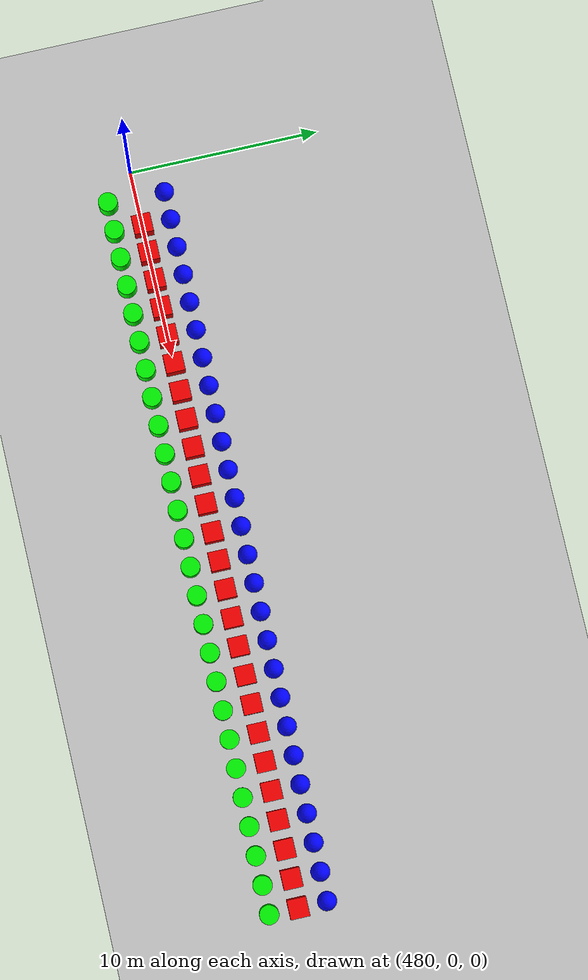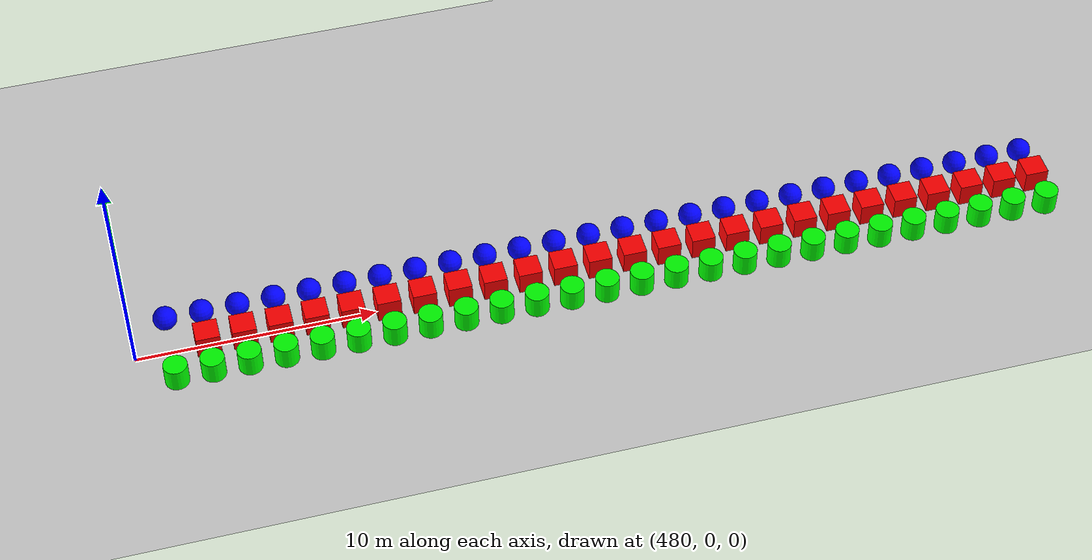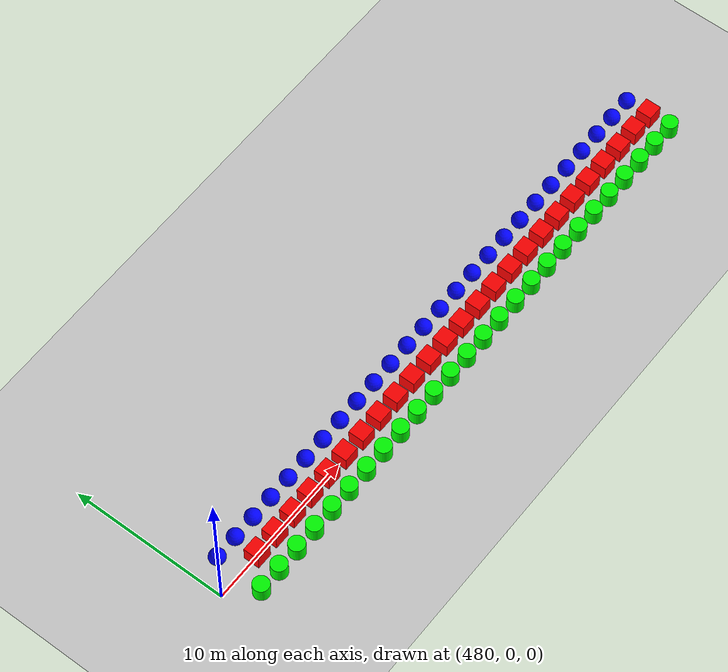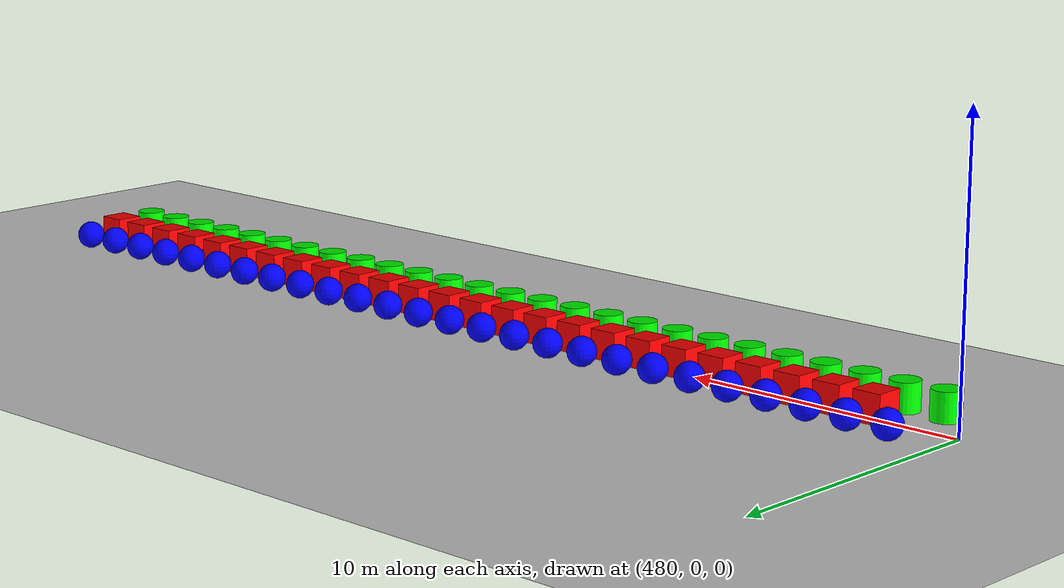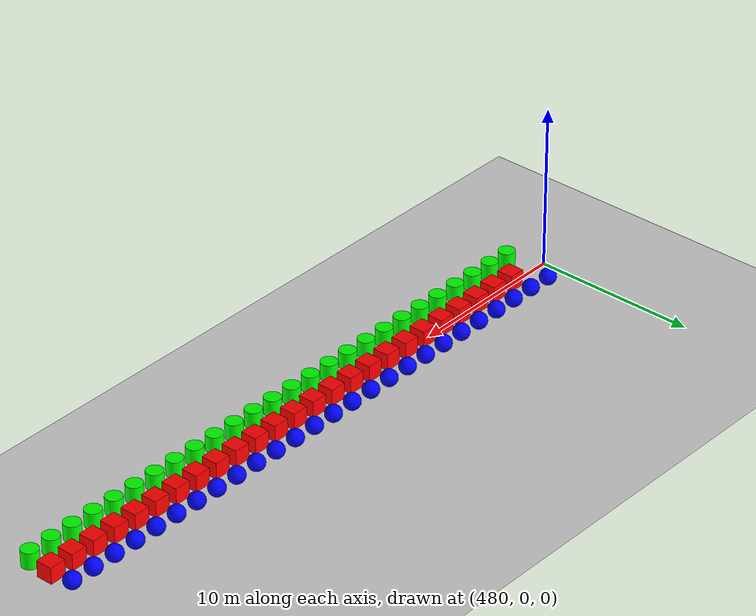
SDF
<sdf version="1.6">
 <world name="shapes">
  <model name="ground_plane">
   <static>true</static>
   <link name="link">
    <collision name="collision">
     <geometry><plane><normal>0 0 1</normal><size>100 100</size></plane></geometry>
    </collision>
    <visual name="visual">
     <geometry><plane><normal>0 0 1</normal><size>100 100</size></plane></geometry>
     <material>
      <ambient>0.8 0.8 0.8 1</ambient>
      <diffuse>0.8 0.8 0.8 1</diffuse>
      <specular>0.8 0.8 0.8 1</specular>
     </material>
    </visual>
   </link>
  </model>
  <model name="cylinder_821">
   <static>false</static>
   <pose>481.5 -1.5 0.5 0 0 0</pose>
   <link name="cylinder_link">
    <inertial>
     <inertia><ixx>2</ixx><ixy>0</ixy><ixz>0</ixz><iyy>2</iyy><iyz>0</iyz><izz>2</izz></inertia>
     <mass>2.0</mass>
    </inertial>
    <collision name="cylinder_collision">
     <geometry><cylinder><radius>0.5</radius><length>1.0</length></cylinder></geometry>
    </collision>
    <visual name="cylinder_visual">
     <geometry><cylinder><radius>0.5</radius><length>1.0</length></cylinder></geometry>
     <material><ambient>0 1 0 1</ambient><diffuse>0 1 0 1</diffuse><specular>0 1 0 1</specular></material>
    </visual>
   </link>
  </model>
  <model name="sphere_821">
   <static>false</static>
   <pose>481.5 1.5 0.5 0 0 0</pose>
   <link name="sphere_link">
    <inertial>
     <inertia><ixx>3</ixx><ixy>0</ixy><ixz>0</ixz><iyy>3</iyy><iyz>0</iyz><izz>3</izz></inertia>
     <mass>3.0</mass>
    </inertial>
    <collision name="sphere_collision"><geometry><sphere><radius>0.5</radius></sphere></geometry></collision>
    <visual name="sphere_visual">
     <geometry><sphere><radius>0.5</radius></sphere></geometry>
     <material><ambient>0 0 1 1</ambient><diffuse>0 0 1 1</diffuse><specular>0 0 1 1</specular></material>
    </visual>
   </link>
  </model>
  <model name="box_822">
   <static>false</static>
   <pose>483.0 0 0.5 0 0 0</pose>
   <link name="box_link">
    <inertial>
     <inertia><ixx>1</ixx><ixy>0</ixy><ixz>0</ixz><iyy>1</iyy><iyz>0</iyz><izz>1</izz></inertia>
     <mass>1.0</mass>
    </inertial>
    <collision name="box_collision"><geometry><box><size>1 1 1</size></box></geometry></collision>
    <visual name="box_visual">
     <geometry><box><size>1 1 1</size></box></geometry>
     <material><ambient>1 0 0 1</ambient><diffuse>1 0 0 1</diffuse><specular>1 0 0 1</specular></material>
    </visual>
   </link>
  </model>
  <model name="cylinder_822">
   <static>false</static>
   <pose>483.0 -1.5 0.5 0 0 0</pose>
   <link name="cylinder_link">
    <inertial>
     <inertia><ixx>2</ixx><ixy>0</ixy><ixz>0</ixz><iyy>2</iyy><iyz>0</iyz><izz>2</izz></inertia>
     <mass>2.0</mass>
    </inertial>
    <collision name="cylinder_collision">
     <geometry><cylinder><radius>0.5</radius><length>1.0</length></cylinder></geometry>
    </collision>
    <visual name="cylinder_visual">
     <geometry><cylinder><radius>0.5</radius><length>1.0</length></cylinder></geometry>
     <material><ambient>0 1 0 1</ambient><diffuse>0 1 0 1</diffuse><specular>0 1 0 1</specular></material>
    </visual>
   </link>
  </model>
  <model name="sphere_822">
   <static>false</static>
   <pose>483.0 1.5 0.5 0 0 0</pose>
   <link name="sphere_link">
    <inertial>
     <inertia><ixx>3</ixx><ixy>0</ixy><ixz>0</ixz><iyy>3</iyy><iyz>0</iyz><izz>3</izz></inertia>
     <mass>3.0</mass>
    </inertial>
    <collision name="sphere_collision"><geometry><sphere><radius>0.5</radius></sphere></geometry></collision>
    <visual name="sphere_visual">
     <geometry><sphere><radius>0.5</radius></sphere></geometry>
     <material><ambient>0 0 1 1</ambient><diffuse>0 0 1 1</diffuse><specular>0 0 1 1</specular></material>
    </visual>
   </link>
  </model>
  <model name="box_823">
   <static>false</static>
   <pose>484.5 0 0.5 0 0 0</pose>
   <link name="box_link">
    <inertial>
     <inertia><ixx>1</ixx><ixy>0</ixy><ixz>0</ixz><iyy>1</iyy><iyz>0</iyz><izz>1</izz></inertia>
     <mass>1.0</mass>
    </inertial>
    <collision name="box_collision"><geometry><box><size>1 1 1</size></box></geometry></collision>
    <visual name="box_visual">
     <geometry><box><size>1 1 1</size></box></geometry>
     <material><ambient>1 0 0 1</ambient><diffuse>1 0 0 1</diffuse><specular>1 0 0 1</specular></material>
    </visual>
   </link>
  </model>
  <model name="cylinder_823">
   <static>false</static>
   <pose>484.5 -1.5 0.5 0 0 0</pose>
   <link name="cylinder_link">
    <inertial>
     <inertia><ixx>2</ixx><ixy>0</ixy><ixz>0</ixz><iyy>2</iyy><iyz>0</iyz><izz>2</izz></inertia>
     <mass>2.0</mass>
    </inertial>
    <collision name="cylinder_collision">
     <geometry><cylinder><radius>0.5</radius><length>1.0</length></cylinder></geometry>
    </collision>
    <visual name="cylinder_visual">
     <geometry><cylinder><radius>0.5</radius><length>1.0</length></cylinder></geometry>
     <material><ambient>0 1 0 1</ambient><diffuse>0 1 0 1</diffuse><specular>0 1 0 1</specular></material>
    </visual>
   </link>
  </model>
  <model name="sphere_823">
   <static>false</static>
   <pose>484.5 1.5 0.5 0 0 0</pose>
   <link name="sphere_link">
    <inertial>
     <inertia><ixx>3</ixx><ixy>0</ixy><ixz>0</ixz><iyy>3</iyy><iyz>0</iyz><izz>3</izz></inertia>
     <mass>3.0</mass>
    </inertial>
    <collision name="sphere_collision"><geometry><sphere><radius>0.5</radius></sphere></geometry></collision>
    <visual name="sphere_visual">
     <geometry><sphere><radius>0.5</radius></sphere></geometry>
     <material><ambient>0 0 1 1</ambient><diffuse>0 0 1 1</diffuse><specular>0 0 1 1</specular></material>
    </visual>
   </link>
  </model>
  <model name="box_824">
   <static>false</static>
   <pose>486.0 0 0.5 0 0 0</pose>
   <link name="box_link">
    <inertial>
     <inertia><ixx>1</ixx><ixy>0</ixy><ixz>0</ixz><iyy>1</iyy><iyz>0</iyz><izz>1</izz></inertia>
     <mass>1.0</mass>
    </inertial>
    <collision name="box_collision"><geometry><box><size>1 1 1</size></box></geometry></collision>
    <visual name="box_visual">
     <geometry><box><size>1 1 1</size></box></geometry>
     <material><ambient>1 0 0 1</ambient><diffuse>1 0 0 1</diffuse><specular>1 0 0 1</specular></material>
    </visual>
   </link>
  </model>
  <model name="cylinder_824">
   <static>false</static>
   <pose>486.0 -1.5 0.5 0 0 0</pose>
   <link name="cylinder_link">
    <inertial>
     <inertia><ixx>2</ixx><ixy>0</ixy><ixz>0</ixz><iyy>2</iyy><iyz>0</iyz><izz>2</izz></inertia>
     <mass>2.0</mass>
    </inertial>
    <collision name="cylinder_collision">
     <geometry><cylinder><radius>0.5</radius><length>1.0</length></cylinder></geometry>
    </collision>
    <visual name="cylinder_visual">
     <geometry><cylinder><radius>0.5</radius><length>1.0</length></cylinder></geometry>
     <material><ambient>0 1 0 1</ambient><diffuse>0 1 0 1</diffuse><specular>0 1 0 1</specular></material>
    </visual>
   </link>
  </model>
  <model name="sphere_824">
   <static>false</static>
   <pose>486.0 1.5 0.5 0 0 0</pose>
   <link name="sphere_link">
    <inertial>
     <inertia><ixx>3</ixx><ixy>0</ixy><ixz>0</ixz><iyy>3</iyy><iyz>0</iyz><izz>3</izz></inertia>
     <mass>3.0</mass>
    </inertial>
    <collision name="sphere_collision"><geometry><sphere><radius>0.5</radius></sphere></geometry></collision>
    <visual name="sphere_visual">
     <geometry><sphere><radius>0.5</radius></sphere></geometry>
     <material><ambient>0 0 1 1</ambient><diffuse>0 0 1 1</diffuse><specular>0 0 1 1</specular></material>
    </visual>
   </link>
  </model>
  <model name="box_825">
   <static>false</static>
   <pose>487.5 0 0.5 0 0 0</pose>
   <link name="box_link">
    <inertial>
     <inertia><ixx>1</ixx><ixy>0</ixy><ixz>0</ixz><iyy>1</iyy><iyz>0</iyz><izz>1</izz></inertia>
     <mass>1.0</mass>
    </inertial>
    <collision name="box_collision"><geometry><box><size>1 1 1</size></box></geometry></collision>
    <visual name="box_visual">
     <geometry><box><size>1 1 1</size></box></geometry>
     <material><ambient>1 0 0 1</ambient><diffuse>1 0 0 1</diffuse><specular>1 0 0 1</specular></material>
    </visual>
   </link>
  </model>
  <model name="cylinder_825">
   <static>false</static>
   <pose>487.5 -1.5 0.5 0 0 0</pose>
   <link name="cylinder_link">
    <inertial>
     <inertia><ixx>2</ixx><ixy>0</ixy><ixz>0</ixz><iyy>2</iyy><iyz>0</iyz><izz>2</izz></inertia>
     <mass>2.0</mass>
    </inertial>
    <collision name="cylinder_collision">
     <geometry><cylinder><radius>0.5</radius><length>1.0</length></cylinder></geometry>
    </collision>
    <visual name="cylinder_visual">
     <geometry><cylinder><radius>0.5</radius><length>1.0</length></cylinder></geometry>
     <material><ambient>0 1 0 1</ambient><diffuse>0 1 0 1</diffuse><specular>0 1 0 1</specular></material>
    </visual>
   </link>
  </model>
  <model name="sphere_825">
   <static>false</static>
   <pose>487.5 1.5 0.5 0 0 0</pose>
   <link name="sphere_link">
    <inertial>
     <inertia><ixx>3</ixx><ixy>0</ixy><ixz>0</ixz><iyy>3</iyy><iyz>0</iyz><izz>3</izz></inertia>
     <mass>3.0</mass>
    </inertial>
    <collision name="sphere_collision"><geometry><sphere><radius>0.5</radius></sphere></geometry></collision>
    <visual name="sphere_visual">
     <geometry><sphere><radius>0.5</radius></sphere></geometry>
     <material><ambient>0 0 1 1</ambient><diffuse>0 0 1 1</diffuse><specular>0 0 1 1</specular></material>
    </visual>
   </link>
  </model>
  <model name="box_826">
   <static>false</static>
   <pose>489.0 0 0.5 0 0 0</pose>
   <link name="box_link">
    <inertial>
     <inertia><ixx>1</ixx><ixy>0</ixy><ixz>0</ixz><iyy>1</iyy><iyz>0</iyz><izz>1</izz></inertia>
     <mass>1.0</mass>
    </inertial>
    <collision name="box_collision"><geometry><box><size>1 1 1</size></box></geometry></collision>
    <visual name="box_visual">
     <geometry><box><size>1 1 1</size></box></geometry>
     <material><ambient>1 0 0 1</ambient><diffuse>1 0 0 1</diffuse><specular>1 0 0 1</specular></material>
    </visual>
   </link>
  </model>
  <model name="cylinder_826">
   <static>false</static>
   <pose>489.0 -1.5 0.5 0 0 0</pose>
   <link name="cylinder_link">
    <inertial>
     <inertia><ixx>2</ixx><ixy>0</ixy><ixz>0</ixz><iyy>2</iyy><iyz>0</iyz><izz>2</izz></inertia>
     <mass>2.0</mass>
    </inertial>
    <collision name="cylinder_collision">
     <geometry><cylinder><radius>0.5</radius><length>1.0</length></cylinder></geometry>
    </collision>
    <visual name="cylinder_visual">
     <geometry><cylinder><radius>0.5</radius><length>1.0</length></cylinder></geometry>
     <material><ambient>0 1 0 1</ambient><diffuse>0 1 0 1</diffuse><specular>0 1 0 1</specular></material>
    </visual>
   </link>
  </model>
  <model name="sphere_826">
   <static>false</static>
   <pose>489.0 1.5 0.5 0 0 0</pose>
   <link name="sphere_link">
    <inertial>
     <inertia><ixx>3</ixx><ixy>0</ixy><ixz>0</ixz><iyy>3</iyy><iyz>0</iyz><izz>3</izz></inertia>
     <mass>3.0</mass>
    </inertial>
    <collision name="sphere_collision"><geometry><sphere><radius>0.5</radius></sphere></geometry></collision>
    <visual name="sphere_visual">
     <geometry><sphere><radius>0.5</radius></sphere></geometry>
     <material><ambient>0 0 1 1</ambient><diffuse>0 0 1 1</diffuse><specular>0 0 1 1</specular></material>
    </visual>
   </link>
  </model>
  <model name="box_827">
   <static>false</static>
   <pose>490.5 0 0.5 0 0 0</pose>
   <link name="box_link">
    <inertial>
     <inertia><ixx>1</ixx><ixy>0</ixy><ixz>0</ixz><iyy>1</iyy><iyz>0</iyz><izz>1</izz></inertia>
     <mass>1.0</mass>
    </inertial>
    <collision name="box_collision"><geometry><box><size>1 1 1</size></box></geometry></collision>
    <visual name="box_visual">
     <geometry><box><size>1 1 1</size></box></geometry>
     <material><ambient>1 0 0 1</ambient><diffuse>1 0 0 1</diffuse><specular>1 0 0 1</specular></material>
    </visual>
   </link>
  </model>
  <model name="cylinder_827">
   <static>false</static>
   <pose>490.5 -1.5 0.5 0 0 0</pose>
   <link name="cylinder_link">
    <inertial>
     <inertia><ixx>2</ixx><ixy>0</ixy><ixz>0</ixz><iyy>2</iyy><iyz>0</iyz><izz>2</izz></inertia>
     <mass>2.0</mass>
    </inertial>
    <collision name="cylinder_collision">
     <geometry><cylinder><radius>0.5</radius><length>1.0</length></cylinder></geometry>
    </collision>
    <visual name="cylinder_visual">
     <geometry><cylinder><radius>0.5</radius><length>1.0</length></cylinder></geometry>
     <material><ambient>0 1 0 1</ambient><diffuse>0 1 0 1</diffuse><specular>0 1 0 1</specular></material>
    </visual>
   </link>
  </model>
  <model name="sphere_827">
   <static>false</static>
   <pose>490.5 1.5 0.5 0 0 0</pose>
   <link name="sphere_link">
    <inertial>
     <inertia><ixx>3</ixx><ixy>0</ixy><ixz>0</ixz><iyy>3</iyy><iyz>0</iyz><izz>3</izz></inertia>
     <mass>3.0</mass>
    </inertial>
    <collision name="sphere_collision"><geometry><sphere><radius>0.5</radius></sphere></geometry></collision>
    <visual name="sphere_visual">
     <geometry><sphere><radius>0.5</radius></sphere></geometry>
     <material><ambient>0 0 1 1</ambient><diffuse>0 0 1 1</diffuse><specular>0 0 1 1</specular></material>
    </visual>
   </link>
  </model>
  <model name="box_828">
   <static>false</static>
   <pose>492.0 0 0.5 0 0 0</pose>
   <link name="box_link">
    <inertial>
     <inertia><ixx>1</ixx><ixy>0</ixy><ixz>0</ixz><iyy>1</iyy><iyz>0</iyz><izz>1</izz></inertia>
     <mass>1.0</mass>
    </inertial>
    <collision name="box_collision"><geometry><box><size>1 1 1</size></box></geometry></collision>
    <visual name="box_visual">
     <geometry><box><size>1 1 1</size></box></geometry>
     <material><ambient>1 0 0 1</ambient><diffuse>1 0 0 1</diffuse><specular>1 0 0 1</specular></material>
    </visual>
   </link>
  </model>
  <model name="cylinder_828">
   <static>false</static>
   <pose>492.0 -1.5 0.5 0 0 0</pose>
   <link name="cylinder_link">
    <inertial>
     <inertia><ixx>2</ixx><ixy>0</ixy><ixz>0</ixz><iyy>2</iyy><iyz>0</iyz><izz>2</izz></inertia>
     <mass>2.0</mass>
    </inertial>
    <collision name="cylinder_collision">
     <geometry><cylinder><radius>0.5</radius><length>1.0</length></cylinder></geometry>
    </collision>
    <visual name="cylinder_visual">
     <geometry><cylinder><radius>0.5</radius><length>1.0</length></cylinder></geometry>
     <material><ambient>0 1 0 1</ambient><diffuse>0 1 0 1</diffuse><specular>0 1 0 1</specular></material>
    </visual>
   </link>
  </model>
  <model name="sphere_828">
   <static>false</static>
   <pose>492.0 1.5 0.5 0 0 0</pose>
   <link name="sphere_link">
    <inertial>
     <inertia><ixx>3</ixx><ixy>0</ixy><ixz>0</ixz><iyy>3</iyy><iyz>0</iyz><izz>3</izz></inertia>
     <mass>3.0</mass>
    </inertial>
    <collision name="sphere_collision"><geometry><sphere><radius>0.5</radius></sphere></geometry></collision>
    <visual name="sphere_visual">
     <geometry><sphere><radius>0.5</radius></sphere></geometry>
     <material><ambient>0 0 1 1</ambient><diffuse>0 0 1 1</diffuse><specular>0 0 1 1</specular></material>
    </visual>
   </link>
  </model>
  <model name="box_829">
   <static>false</static>
   <pose>493.5 0 0.5 0 0 0</pose>
   <link name="box_link">
    <inertial>
     <inertia><ixx>1</ixx><ixy>0</ixy><ixz>0</ixz><iyy>1</iyy><iyz>0</iyz><izz>1</izz></inertia>
     <mass>1.0</mass>
    </inertial>
    <collision name="box_collision"><geometry><box><size>1 1 1</size></box></geometry></collision>
    <visual name="box_visual">
     <geometry><box><size>1 1 1</size></box></geometry>
     <material><ambient>1 0 0 1</ambient><diffuse>1 0 0 1</diffuse><specular>1 0 0 1</specular></material>
    </visual>
   </link>
  </model>
  <model name="cylinder_829">
   <static>false</static>
   <pose>493.5 -1.5 0.5 0 0 0</pose>
   <link name="cylinder_link">
    <inertial>
     <inertia><ixx>2</ixx><ixy>0</ixy><ixz>0</ixz><iyy>2</iyy><iyz>0</iyz><izz>2</izz></inertia>
     <mass>2.0</mass>
    </inertial>
    <collision name="cylinder_collision">
     <geometry><cylinder><radius>0.5</radius><length>1.0</length></cylinder></geometry>
    </collision>
    <visual name="cylinder_visual">
     <geometry><cylinder><radius>0.5</radius><length>1.0</length></cylinder></geometry>
     <material><ambient>0 1 0 1</ambient><diffuse>0 1 0 1</diffuse><specular>0 1 0 1</specular></material>
    </visual>
   </link>
  </model>
  <model name="sphere_829">
   <static>false</static>
   <pose>493.5 1.5 0.5 0 0 0</pose>
   <link name="sphere_link">
    <inertial>
     <inertia><ixx>3</ixx><ixy>0</ixy><ixz>0</ixz><iyy>3</iyy><iyz>0</iyz><izz>3</izz></inertia>
     <mass>3.0</mass>
    </inertial>
    <collision name="sphere_collision"><geometry><sphere><radius>0.5</radius></sphere></geometry></collision>
    <visual name="sphere_visual">
     <geometry><sphere><radius>0.5</radius></sphere></geometry>
     <material><ambient>0 0 1 1</ambient><diffuse>0 0 1 1</diffuse><specular>0 0 1 1</specular></material>
    </visual>
   </link>
  </model>
  <model name="box_830">
   <static>false</static>
   <pose>495.0 0 0.5 0 0 0</pose>
   <link name="box_link">
    <inertial>
     <inertia><ixx>1</ixx><ixy>0</ixy><ixz>0</ixz><iyy>1</iyy><iyz>0</iyz><izz>1</izz></inertia>
     <mass>1.0</mass>
    </inertial>
    <collision name="box_collision"><geometry><box><size>1 1 1</size></box></geometry></collision>
    <visual name="box_visual">
     <geometry><box><size>1 1 1</size></box></geometry>
     <material><ambient>1 0 0 1</ambient><diffuse>1 0 0 1</diffuse><specular>1 0 0 1</specular></material>
    </visual>
   </link>
  </model>
  <model name="cylinder_830">
   <static>false</static>
   <pose>495.0 -1.5 0.5 0 0 0</pose>
   <link name="cylinder_link">
    <inertial>
     <inertia><ixx>2</ixx><ixy>0</ixy><ixz>0</ixz><iyy>2</iyy><iyz>0</iyz><izz>2</izz></inertia>
     <mass>2.0</mass>
    </inertial>
    <collision name="cylinder_collision">
     <geometry><cylinder><radius>0.5</radius><length>1.0</length></cylinder></geometry>
    </collision>
    <visual name="cylinder_visual">
     <geometry><cylinder><radius>0.5</radius><length>1.0</length></cylinder></geometry>
     <material><ambient>0 1 0 1</ambient><diffuse>0 1 0 1</diffuse><specular>0 1 0 1</specular></material>
    </visual>
   </link>
  </model>
  <model name="sphere_830">
   <static>false</static>
   <pose>495.0 1.5 0.5 0 0 0</pose>
   <link name="sphere_link">
    <inertial>
     <inertia><ixx>3</ixx><ixy>0</ixy><ixz>0</ixz><iyy>3</iyy><iyz>0</iyz><izz>3</izz></inertia>
     <mass>3.0</mass>
    </inertial>
    <collision name="sphere_collision"><geometry><sphere><radius>0.5</radius></sphere></geometry></collision>
    <visual name="sphere_visual">
     <geometry><sphere><radius>0.5</radius></sphere></geometry>
     <material><ambient>0 0 1 1</ambient><diffuse>0 0 1 1</diffuse><specular>0 0 1 1</specular></material>
    </visual>
   </link>
  </model>
  <model name="box_831">
   <static>false</static>
   <pose>496.5 0 0.5 0 0 0</pose>
   <link name="box_link">
    <inertial>
     <inertia><ixx>1</ixx><ixy>0</ixy><ixz>0</ixz><iyy>1</iyy><iyz>0</iyz><izz>1</izz></inertia>
     <mass>1.0</mass>
    </inertial>
    <collision name="box_collision"><geometry><box><size>1 1 1</size></box></geometry></collision>
    <visual name="box_visual">
     <geometry><box><size>1 1 1</size></box></geometry>
     <material><ambient>1 0 0 1</ambient><diffuse>1 0 0 1</diffuse><specular>1 0 0 1</specular></material>
    </visual>
   </link>
  </model>
  <model name="cylinder_831">
   <static>false</static>
   <pose>496.5 -1.5 0.5 0 0 0</pose>
   <link name="cylinder_link">
    <inertial>
     <inertia><ixx>2</ixx><ixy>0</ixy><ixz>0</ixz><iyy>2</iyy><iyz>0</iyz><izz>2</izz></inertia>
     <mass>2.0</mass>
    </inertial>
    <collision name="cylinder_collision">
     <geometry><cylinder><radius>0.5</radius><length>1.0</length></cylinder></geometry>
    </collision>
    <visual name="cylinder_visual">
     <geometry><cylinder><radius>0.5</radius><length>1.0</length></cylinder></geometry>
     <material><ambient>0 1 0 1</ambient><diffuse>0 1 0 1</diffuse><specular>0 1 0 1</specular></material>
    </visual>
   </link>
  </model>
  <model name="sphere_831">
   <static>false</static>
   <pose>496.5 1.5 0.5 0 0 0</pose>
   <link name="sphere_link">
    <inertial>
     <inertia><ixx>3</ixx><ixy>0</ixy><ixz>0</ixz><iyy>3</iyy><iyz>0</iyz><izz>3</izz></inertia>
     <mass>3.0</mass>
    </inertial>
    <collision name="sphere_collision"><geometry><sphere><radius>0.5</radius></sphere></geometry></collision>
    <visual name="sphere_visual">
     <geometry><sphere><radius>0.5</radius></sphere></geometry>
     <material><ambient>0 0 1 1</ambient><diffuse>0 0 1 1</diffuse><specular>0 0 1 1</specular></material>
    </visual>
   </link>
  </model>
  <model name="box_832">
   <static>false</static>
   <pose>498.0 0 0.5 0 0 0</pose>
   <link name="box_link">
    <inertial>
     <inertia><ixx>1</ixx><ixy>0</ixy><ixz>0</ixz><iyy>1</iyy><iyz>0</iyz><izz>1</izz></inertia>
     <mass>1.0</mass>
    </inertial>
    <collision name="box_collision"><geometry><box><size>1 1 1</size></box></geometry></collision>
    <visual name="box_visual">
     <geometry><box><size>1 1 1</size></box></geometry>
     <material><ambient>1 0 0 1</ambient><diffuse>1 0 0 1</diffuse><specular>1 0 0 1</specular></material>
    </visual>
   </link>
  </model>
  <model name="cylinder_832">
   <static>false</static>
   <pose>498.0 -1.5 0.5 0 0 0</pose>
   <link name="cylinder_link">
    <inertial>
     <inertia><ixx>2</ixx><ixy>0</ixy><ixz>0</ixz><iyy>2</iyy><iyz>0</iyz><izz>2</izz></inertia>
     <mass>2.0</mass>
    </inertial>
    <collision name="cylinder_collision">
     <geometry><cylinder><radius>0.5</radius><length>1.0</length></cylinder></geometry>
    </collision>
    <visual name="cylinder_visual">
     <geometry><cylinder><radius>0.5</radius><length>1.0</length></cylinder></geometry>
     <material><ambient>0 1 0 1</ambient><diffuse>0 1 0 1</diffuse><specular>0 1 0 1</specular></material>
    </visual>
   </link>
  </model>
  <model name="sphere_832">
   <static>false</static>
   <pose>498.0 1.5 0.5 0 0 0</pose>
   <link name="sphere_link">
    <inertial>
     <inertia><ixx>3</ixx><ixy>0</ixy><ixz>0</ixz><iyy>3</iyy><iyz>0</iyz><izz>3</izz></inertia>
     <mass>3.0</mass>
    </inertial>
    <collision name="sphere_collision"><geometry><sphere><radius>0.5</radius></sphere></geometry></collision>
    <visual name="sphere_visual">
     <geometry><sphere><radius>0.5</radius></sphere></geometry>
     <material><ambient>0 0 1 1</ambient><diffuse>0 0 1 1</diffuse><specular>0 0 1 1</specular></material>
    </visual>
   </link>
  </model>
  <model name="box_833">
   <static>false</static>
   <pose>499.5 0 0.5 0 0 0</pose>
   <link name="box_link">
    <inertial>
     <inertia><ixx>1</ixx><ixy>0</ixy><ixz>0</ixz><iyy>1</iyy><iyz>0</iyz><izz>1</izz></inertia>
     <mass>1.0</mass>
    </inertial>
    <collision name="box_collision"><geometry><box><size>1 1 1</size></box></geometry></collision>
    <visual name="box_visual">
     <geometry><box><size>1 1 1</size></box></geometry>
     <material><ambient>1 0 0 1</ambient><diffuse>1 0 0 1</diffuse><specular>1 0 0 1</specular></material>
    </visual>
   </link>
  </model>
  <model name="cylinder_833">
   <static>false</static>
   <pose>499.5 -1.5 0.5 0 0 0</pose>
   <link name="cylinder_link">
    <inertial>
     <inertia><ixx>2</ixx><ixy>0</ixy><ixz>0</ixz><iyy>2</iyy><iyz>0</iyz><izz>2</izz></inertia>
     <mass>2.0</mass>
    </inertial>
    <collision name="cylinder_collision">
     <geometry><cylinder><radius>0.5</radius><length>1.0</length></cylinder></geometry>
    </collision>
    <visual name="cylinder_visual">
     <geometry><cylinder><radius>0.5</radius><length>1.0</length></cylinder></geometry>
     <material><ambient>0 1 0 1</ambient><diffuse>0 1 0 1</diffuse><specular>0 1 0 1</specular></material>
    </visual>
   </link>
  </model>
  <model name="sphere_833">
   <static>false</static>
   <pose>499.5 1.5 0.5 0 0 0</pose>
   <link name="sphere_link">
    <inertial>
     <inertia><ixx>3</ixx><ixy>0</ixy><ixz>0</ixz><iyy>3</iyy><iyz>0</iyz><izz>3</izz></inertia>
     <mass>3.0</mass>
    </inertial>
    <collision name="sphere_collision"><geometry><sphere><radius>0.5</radius></sphere></geometry></collision>
    <visual name="sphere_visual">
     <geometry><sphere><radius>0.5</radius></sphere></geometry>
     <material><ambient>0 0 1 1</ambient><diffuse>0 0 1 1</diffuse><specular>0 0 1 1</specular></material>
    </visual>
   </link>
  </model>
  <model name="box_834">
   <static>false</static>
   <pose>501.0 0 0.5 0 0 0</pose>
   <link name="box_link">
    <inertial>
     <inertia><ixx>1</ixx><ixy>0</ixy><ixz>0</ixz><iyy>1</iyy><iyz>0</iyz><izz>1</izz></inertia>
     <mass>1.0</mass>
    </inertial>
    <collision name="box_collision"><geometry><box><size>1 1 1</size></box></geometry></collision>
    <visual name="box_visual">
     <geometry><box><size>1 1 1</size></box></geometry>
     <material><ambient>1 0 0 1</ambient><diffuse>1 0 0 1</diffuse><specular>1 0 0 1</specular></material>
    </visual>
   </link>
  </model>
  <model name="cylinder_834">
   <static>false</static>
   <pose>501.0 -1.5 0.5 0 0 0</pose>
   <link name="cylinder_link">
    <inertial>
     <inertia><ixx>2</ixx><ixy>0</ixy><ixz>0</ixz><iyy>2</iyy><iyz>0</iyz><izz>2</izz></inertia>
     <mass>2.0</mass>
    </inertial>
    <collision name="cylinder_collision">
     <geometry><cylinder><radius>0.5</radius><length>1.0</length></cylinder></geometry>
    </collision>
    <visual name="cylinder_visual">
     <geometry><cylinder><radius>0.5</radius><length>1.0</length></cylinder></geometry>
     <material><ambient>0 1 0 1</ambient><diffuse>0 1 0 1</diffuse><specular>0 1 0 1</specular></material>
    </visual>
   </link>
  </model>
  <model name="sphere_834">
   <static>false</static>
   <pose>501.0 1.5 0.5 0 0 0</pose>
   <link name="sphere_link">
    <inertial>
     <inertia><ixx>3</ixx><ixy>0</ixy><ixz>0</ixz><iyy>3</iyy><iyz>0</iyz><izz>3</izz></inertia>
     <mass>3.0</mass>
    </inertial>
    <collision name="sphere_collision"><geometry><sphere><radius>0.5</radius></sphere></geometry></collision>
    <visual name="sphere_visual">
     <geometry><sphere><radius>0.5</radius></sphere></geometry>
     <material><ambient>0 0 1 1</ambient><diffuse>0 0 1 1</diffuse><specular>0 0 1 1</specular></material>
    </visual>
   </link>
  </model>
  <model name="box_835">
   <static>false</static>
   <pose>502.5 0 0.5 0 0 0</pose>
   <link name="box_link">
    <inertial>
     <inertia><ixx>1</ixx><ixy>0</ixy><ixz>0</ixz><iyy>1</iyy><iyz>0</iyz><izz>1</izz></inertia>
     <mass>1.0</mass>
    </inertial>
    <collision name="box_collision"><geometry><box><size>1 1 1</size></box></geometry></collision>
    <visual name="box_visual">
     <geometry><box><size>1 1 1</size></box></geometry>
     <material><ambient>1 0 0 1</ambient><diffuse>1 0 0 1</diffuse><specular>1 0 0 1</specular></material>
    </visual>
   </link>
  </model>
  <model name="cylinder_835">
   <static>false</static>
   <pose>502.5 -1.5 0.5 0 0 0</pose>
   <link name="cylinder_link">
    <inertial>
     <inertia><ixx>2</ixx><ixy>0</ixy><ixz>0</ixz><iyy>2</iyy><iyz>0</iyz><izz>2</izz></inertia>
     <mass>2.0</mass>
    </inertial>
    <collision name="cylinder_collision">
     <geometry><cylinder><radius>0.5</radius><length>1.0</length></cylinder></geometry>
    </collision>
    <visual name="cylinder_visual">
     <geometry><cylinder><radius>0.5</radius><length>1.0</length></cylinder></geometry>
     <material><ambient>0 1 0 1</ambient><diffuse>0 1 0 1</diffuse><specular>0 1 0 1</specular></material>
    </visual>
   </link>
  </model>
  <model name="sphere_835">
   <static>false</static>
   <pose>502.5 1.5 0.5 0 0 0</pose>
   <link name="sphere_link">
    <inertial>
     <inertia><ixx>3</ixx><ixy>0</ixy><ixz>0</ixz><iyy>3</iyy><iyz>0</iyz><izz>3</izz></inertia>
     <mass>3.0</mass>
    </inertial>
    <collision name="sphere_collision"><geometry><sphere><radius>0.5</radius></sphere></geometry></collision>
    <visual name="sphere_visual">
     <geometry><sphere><radius>0.5</radius></sphere></geometry>
     <material><ambient>0 0 1 1</ambient><diffuse>0 0 1 1</diffuse><specular>0 0 1 1</specular></material>
    </visual>
   </link>
  </model>
  <model name="box_836">
   <static>false</static>
   <pose>504.0 0 0.5 0 0 0</pose>
   <link name="box_link">
    <inertial>
     <inertia><ixx>1</ixx><ixy>0</ixy><ixz>0</ixz><iyy>1</iyy><iyz>0</iyz><izz>1</izz></inertia>
     <mass>1.0</mass>
    </inertial>
    <collision name="box_collision"><geometry><box><size>1 1 1</size></box></geometry></collision>
    <visual name="box_visual">
     <geometry><box><size>1 1 1</size></box></geometry>
     <material><ambient>1 0 0 1</ambient><diffuse>1 0 0 1</diffuse><specular>1 0 0 1</specular></material>
    </visual>
   </link>
  </model>
  <model name="cylinder_836">
   <static>false</static>
   <pose>504.0 -1.5 0.5 0 0 0</pose>
   <link name="cylinder_link">
    <inertial>
     <inertia><ixx>2</ixx><ixy>0</ixy><ixz>0</ixz><iyy>2</iyy><iyz>0</iyz><izz>2</izz></inertia>
     <mass>2.0</mass>
    </inertial>
    <collision name="cylinder_collision">
     <geometry><cylinder><radius>0.5</radius><length>1.0</length></cylinder></geometry>
    </collision>
    <visual name="cylinder_visual">
     <geometry><cylinder><radius>0.5</radius><length>1.0</length></cylinder></geometry>
     <material><ambient>0 1 0 1</ambient><diffuse>0 1 0 1</diffuse><specular>0 1 0 1</specular></material>
    </visual>
   </link>
  </model>
  <model name="sphere_836">
   <static>false</static>
   <pose>504.0 1.5 0.5 0 0 0</pose>
   <link name="sphere_link">
    <inertial>
     <inertia><ixx>3</ixx><ixy>0</ixy><ixz>0</ixz><iyy>3</iyy><iyz>0</iyz><izz>3</izz></inertia>
     <mass>3.0</mass>
    </inertial>
    <collision name="sphere_collision"><geometry><sphere><radius>0.5</radius></sphere></geometry></collision>
    <visual name="sphere_visual">
     <geometry><sphere><radius>0.5</radius></sphere></geometry>
     <material><ambient>0 0 1 1</ambient><diffuse>0 0 1 1</diffuse><specular>0 0 1 1</specular></material>
    </visual>
   </link>
  </model>
  <model name="box_837">
   <static>false</static>
   <pose>505.5 0 0.5 0 0 0</pose>
   <link name="box_link">
    <inertial>
     <inertia><ixx>1</ixx><ixy>0</ixy><ixz>0</ixz><iyy>1</iyy><iyz>0</iyz><izz>1</izz></inertia>
     <mass>1.0</mass>
    </inertial>
    <collision name="box_collision"><geometry><box><size>1 1 1</size></box></geometry></collision>
    <visual name="box_visual">
     <geometry><box><size>1 1 1</size></box></geometry>
     <material><ambient>1 0 0 1</ambient><diffuse>1 0 0 1</diffuse><specular>1 0 0 1</specular></material>
    </visual>
   </link>
  </model>
  <model name="cylinder_837">
   <static>false</static>
   <pose>505.5 -1.5 0.5 0 0 0</pose>
   <link name="cylinder_link">
    <inertial>
     <inertia><ixx>2</ixx><ixy>0</ixy><ixz>0</ixz><iyy>2</iyy><iyz>0</iyz><izz>2</izz></inertia>
     <mass>2.0</mass>
    </inertial>
    <collision name="cylinder_collision">
     <geometry><cylinder><radius>0.5</radius><length>1.0</length></cylinder></geometry>
    </collision>
    <visual name="cylinder_visual">
     <geometry><cylinder><radius>0.5</radius><length>1.0</length></cylinder></geometry>
     <material><ambient>0 1 0 1</ambient><diffuse>0 1 0 1</diffuse><specular>0 1 0 1</specular></material>
    </visual>
   </link>
  </model>
  <model name="sphere_837">
   <static>false</static>
   <pose>505.5 1.5 0.5 0 0 0</pose>
   <link name="sphere_link">
    <inertial>
     <inertia><ixx>3</ixx><ixy>0</ixy><ixz>0</ixz><iyy>3</iyy><iyz>0</iyz><izz>3</izz></inertia>
     <mass>3.0</mass>
    </inertial>
    <collision name="sphere_collision"><geometry><sphere><radius>0.5</radius></sphere></geometry></collision>
    <visual name="sphere_visual">
     <geometry><sphere><radius>0.5</radius></sphere></geometry>
     <material><ambient>0 0 1 1</ambient><diffuse>0 0 1 1</diffuse><specular>0 0 1 1</specular></material>
    </visual>
   </link>
  </model>
  <model name="box_838">
   <static>false</static>
   <pose>507.0 0 0.5 0 0 0</pose>
   <link name="box_link">
    <inertial>
     <inertia><ixx>1</ixx><ixy>0</ixy><ixz>0</ixz><iyy>1</iyy><iyz>0</iyz><izz>1</izz></inertia>
     <mass>1.0</mass>
    </inertial>
    <collision name="box_collision"><geometry><box><size>1 1 1</size></box></geometry></collision>
    <visual name="box_visual">
     <geometry><box><size>1 1 1</size></box></geometry>
     <material><ambient>1 0 0 1</ambient><diffuse>1 0 0 1</diffuse><specular>1 0 0 1</specular></material>
    </visual>
   </link>
  </model>
  <model name="cylinder_838">
   <static>false</static>
   <pose>507.0 -1.5 0.5 0 0 0</pose>
   <link name="cylinder_link">
    <inertial>
     <inertia><ixx>2</ixx><ixy>0</ixy><ixz>0</ixz><iyy>2</iyy><iyz>0</iyz><izz>2</izz></inertia>
     <mass>2.0</mass>
    </inertial>
    <collision name="cylinder_collision">
     <geometry><cylinder><radius>0.5</radius><length>1.0</length></cylinder></geometry>
    </collision>
    <visual name="cylinder_visual">
     <geometry><cylinder><radius>0.5</radius><length>1.0</length></cylinder></geometry>
     <material><ambient>0 1 0 1</ambient><diffuse>0 1 0 1</diffuse><specular>0 1 0 1</specular></material>
    </visual>
   </link>
  </model>
  <model name="sphere_838">
   <static>false</static>
   <pose>507.0 1.5 0.5 0 0 0</pose>
   <link name="sphere_link">
    <inertial>
     <inertia><ixx>3</ixx><ixy>0</ixy><ixz>0</ixz><iyy>3</iyy><iyz>0</iyz><izz>3</izz></inertia>
     <mass>3.0</mass>
    </inertial>
    <collision name="sphere_collision"><geometry><sphere><radius>0.5</radius></sphere></geometry></collision>
    <visual name="sphere_visual">
     <geometry><sphere><radius>0.5</radius></sphere></geometry>
     <material><ambient>0 0 1 1</ambient><diffuse>0 0 1 1</diffuse><specular>0 0 1 1</specular></material>
    </visual>
   </link>
  </model>
  <model name="box_839">
   <static>false</static>
   <pose>508.5 0 0.5 0 0 0</pose>
   <link name="box_link">
    <inertial>
     <inertia><ixx>1</ixx><ixy>0</ixy><ixz>0</ixz><iyy>1</iyy><iyz>0</iyz><izz>1</izz></inertia>
     <mass>1.0</mass>
    </inertial>
    <collision name="box_collision"><geometry><box><size>1 1 1</size></box></geometry></collision>
    <visual name="box_visual">
     <geometry><box><size>1 1 1</size></box></geometry>
     <material><ambient>1 0 0 1</ambient><diffuse>1 0 0 1</diffuse><specular>1 0 0 1</specular></material>
    </visual>
   </link>
  </model>
  <model name="cylinder_839">
   <static>false</static>
   <pose>508.5 -1.5 0.5 0 0 0</pose>
   <link name="cylinder_link">
    <inertial>
     <inertia><ixx>2</ixx><ixy>0</ixy><ixz>0</ixz><iyy>2</iyy><iyz>0</iyz><izz>2</izz></inertia>
     <mass>2.0</mass>
    </inertial>
    <collision name="cylinder_collision">
     <geometry><cylinder><radius>0.5</radius><length>1.0</length></cylinder></geometry>
    </collision>
    <visual name="cylinder_visual">
     <geometry><cylinder><radius>0.5</radius><length>1.0</length></cylinder></geometry>
     <material><ambient>0 1 0 1</ambient><diffuse>0 1 0 1</diffuse><specular>0 1 0 1</specular></material>
    </visual>
   </link>
  </model>
  <model name="sphere_839">
   <static>false</static>
   <pose>508.5 1.5 0.5 0 0 0</pose>
   <link name="sphere_link">
    <inertial>
     <inertia><ixx>3</ixx><ixy>0</ixy><ixz>0</ixz><iyy>3</iyy><iyz>0</iyz><izz>3</izz></inertia>
     <mass>3.0</mass>
    </inertial>
    <collision name="sphere_collision"><geometry><sphere><radius>0.5</radius></sphere></geometry></collision>
    <visual name="sphere_visual">
     <geometry><sphere><radius>0.5</radius></sphere></geometry>
     <material><ambient>0 0 1 1</ambient><diffuse>0 0 1 1</diffuse><specular>0 0 1 1</specular></material>
    </visual>
   </link>
  </model>
  <model name="box_840">
   <static>false</static>
   <pose>510.0 0 0.5 0 0 0</pose>
   <link name="box_link">
    <inertial>
     <inertia><ixx>1</ixx><ixy>0</ixy><ixz>0</ixz><iyy>1</iyy><iyz>0</iyz><izz>1</izz></inertia>
     <mass>1.0</mass>
    </inertial>
    <collision name="box_collision"><geometry><box><size>1 1 1</size></box></geometry></collision>
    <visual name="box_visual">
     <geometry><box><size>1 1 1</size></box></geometry>
     <material><ambient>1 0 0 1</ambient><diffuse>1 0 0 1</diffuse><specular>1 0 0 1</specular></material>
    </visual>
   </link>
  </model>
  <model name="cylinder_840">
   <static>false</static>
   <pose>510.0 -1.5 0.5 0 0 0</pose>
   <link name="cylinder_link">
    <inertial>
     <inertia><ixx>2</ixx><ixy>0</ixy><ixz>0</ixz><iyy>2</iyy><iyz>0</iyz><izz>2</izz></inertia>
     <mass>2.0</mass>
    </inertial>
    <collision name="cylinder_collision">
     <geometry><cylinder><radius>0.5</radius><length>1.0</length></cylinder></geometry>
    </collision>
    <visual name="cylinder_visual">
     <geometry><cylinder><radius>0.5</radius><length>1.0</length></cylinder></geometry>
     <material><ambient>0 1 0 1</ambient><diffuse>0 1 0 1</diffuse><specular>0 1 0 1</specular></material>
    </visual>
   </link>
  </model>
  <model name="sphere_840">
   <static>false</static>
   <pose>510.0 1.5 0.5 0 0 0</pose>
   <link name="sphere_link">
    <inertial>
     <inertia><ixx>3</ixx><ixy>0</ixy><ixz>0</ixz><iyy>3</iyy><iyz>0</iyz><izz>3</izz></inertia>
     <mass>3.0</mass>
    </inertial>
    <collision name="sphere_collision"><geometry><sphere><radius>0.5</radius></sphere></geometry></collision>
    <visual name="sphere_visual">
     <geometry><sphere><radius>0.5</radius></sphere></geometry>
     <material><ambient>0 0 1 1</ambient><diffuse>0 0 1 1</diffuse><specular>0 0 1 1</specular></material>
    </visual>
   </link>
  </model>
  <model name="box_841">
   <static>false</static>
   <pose>511.5 0 0.5 0 0 0</pose>
   <link name="box_link">
    <inertial>
     <inertia><ixx>1</ixx><ixy>0</ixy><ixz>0</ixz><iyy>1</iyy><iyz>0</iyz><izz>1</izz></inertia>
     <mass>1.0</mass>
    </inertial>
    <collision name="box_collision"><geometry><box><size>1 1 1</size></box></geometry></collision>
    <visual name="box_visual">
     <geometry><box><size>1 1 1</size></box></geometry>
     <material><ambient>1 0 0 1</ambient><diffuse>1 0 0 1</diffuse><specular>1 0 0 1</specular></material>
    </visual>
   </link>
  </model>
  <model name="cylinder_841">
   <static>false</static>
   <pose>511.5 -1.5 0.5 0 0 0</pose>
   <link name="cylinder_link">
    <inertial>
     <inertia><ixx>2</ixx><ixy>0</ixy><ixz>0</ixz><iyy>2</iyy><iyz>0</iyz><izz>2</izz></inertia>
     <mass>2.0</mass>
    </inertial>
    <collision name="cylinder_collision">
     <geometry><cylinder><radius>0.5</radius><length>1.0</length></cylinder></geometry>
    </collision>
    <visual name="cylinder_visual">
     <geometry><cylinder><radius>0.5</radius><length>1.0</length></cylinder></geometry>
     <material><ambient>0 1 0 1</ambient><diffuse>0 1 0 1</diffuse><specular>0 1 0 1</specular></material>
    </visual>
   </link>
  </model>
  <model name="sphere_841">
   <static>false</static>
   <pose>511.5 1.5 0.5 0 0 0</pose>
   <link name="sphere_link">
    <inertial>
     <inertia><ixx>3</ixx><ixy>0</ixy><ixz>0</ixz><iyy>3</iyy><iyz>0</iyz><izz>3</izz></inertia>
     <mass>3.0</mass>
    </inertial>
    <collision name="sphere_collision"><geometry><sphere><radius>0.5</radius></sphere></geometry></collision>
    <visual name="sphere_visual">
     <geometry><sphere><radius>0.5</radius></sphere></geometry>
     <material><ambient>0 0 1 1</ambient><diffuse>0 0 1 1</diffuse><specular>0 0 1 1</specular></material>
    </visual>
   </link>
  </model>
  <model name="box_842">
   <static>false</static>
   <pose>513.0 0 0.5 0 0 0</pose>
   <link name="box_link">
    <inertial>
     <inertia><ixx>1</ixx><ixy>0</ixy><ixz>0</ixz><iyy>1</iyy><iyz>0</iyz><izz>1</izz></inertia>
     <mass>1.0</mass>
    </inertial>
    <collision name="box_collision"><geometry><box><size>1 1 1</size></box></geometry></collision>
    <visual name="box_visual">
     <geometry><box><size>1 1 1</size></box></geometry>
     <material><ambient>1 0 0 1</ambient><diffuse>1 0 0 1</diffuse><specular>1 0 0 1</specular></material>
    </visual>
   </link>
  </model>
  <model name="cylinder_842">
   <static>false</static>
   <pose>513.0 -1.5 0.5 0 0 0</pose>
   <link name="cylinder_link">
    <inertial>
     <inertia><ixx>2</ixx><ixy>0</ixy><ixz>0</ixz><iyy>2</iyy><iyz>0</iyz><izz>2</izz></inertia>
     <mass>2.0</mass>
    </inertial>
    <collision name="cylinder_collision">
     <geometry><cylinder><radius>0.5</radius><length>1.0</length></cylinder></geometry>
    </collision>
    <visual name="cylinder_visual">
     <geometry><cylinder><radius>0.5</radius><length>1.0</length></cylinder></geometry>
     <material><ambient>0 1 0 1</ambient><diffuse>0 1 0 1</diffuse><specular>0 1 0 1</specular></material>
    </visual>
   </link>
  </model>
  <model name="sphere_842">
   <static>false</static>
   <pose>513.0 1.5 0.5 0 0 0</pose>
   <link name="sphere_link">
    <inertial>
     <inertia><ixx>3</ixx><ixy>0</ixy><ixz>0</ixz><iyy>3</iyy><iyz>0</iyz><izz>3</izz></inertia>
     <mass>3.0</mass>
    </inertial>
    <collision name="sphere_collision"><geometry><sphere><radius>0.5</radius></sphere></geometry></collision>
    <visual name="sphere_visual">
     <geometry><sphere><radius>0.5</radius></sphere></geometry>
     <material><ambient>0 0 1 1</ambient><diffuse>0 0 1 1</diffuse><specular>0 0 1 1</specular></material>
    </visual>
   </link>
  </model>
  <model name="box_843">
   <static>false</static>
   <pose>514.5 0 0.5 0 0 0</pose>
   <link name="box_link">
    <inertial>
     <inertia><ixx>1</ixx><ixy>0</ixy><ixz>0</ixz><iyy>1</iyy><iyz>0</iyz><izz>1</izz></inertia>
     <mass>1.0</mass>
    </inertial>
    <collision name="box_collision"><geometry><box><size>1 1 1</size></box></geometry></collision>
    <visual name="box_visual">
     <geometry><box><size>1 1 1</size></box></geometry>
     <material><ambient>1 0 0 1</ambient><diffuse>1 0 0 1</diffuse><specular>1 0 0 1</specular></material>
    </visual>
   </link>
  </model>
  <model name="cylinder_843">
   <static>false</static>
   <pose>514.5 -1.5 0.5 0 0 0</pose>
   <link name="cylinder_link">
    <inertial>
     <inertia><ixx>2</ixx><ixy>0</ixy><ixz>0</ixz><iyy>2</iyy><iyz>0</iyz><izz>2</izz></inertia>
     <mass>2.0</mass>
    </inertial>
    <collision name="cylinder_collision">
     <geometry><cylinder><radius>0.5</radius><length>1.0</length></cylinder></geometry>
    </collision>
    <visual name="cylinder_visual">
     <geometry><cylinder><radius>0.5</radius><length>1.0</length></cylinder></geometry>
     <material><ambient>0 1 0 1</ambient><diffuse>0 1 0 1</diffuse><specular>0 1 0 1</specular></material>
    </visual>
   </link>
  </model>
  <model name="sphere_843">
   <static>false</static>
   <pose>514.5 1.5 0.5 0 0 0</pose>
   <link name="sphere_link">
    <inertial>
     <inertia><ixx>3</ixx><ixy>0</ixy><ixz>0</ixz><iyy>3</iyy><iyz>0</iyz><izz>3</izz></inertia>
     <mass>3.0</mass>
    </inertial>
    <collision name="sphere_collision"><geometry><sphere><radius>0.5</radius></sphere></geometry></collision>
    <visual name="sphere_visual">
     <geometry><sphere><radius>0.5</radius></sphere></geometry>
     <material><ambient>0 0 1 1</ambient><diffuse>0 0 1 1</diffuse><specular>0 0 1 1</specular></material>
    </visual>
   </link>
  </model>
  <model name="box_844">
   <static>false</static>
   <pose>516.0 0 0.5 0 0 0</pose>
   <link name="box_link">
    <inertial>
     <inertia><ixx>1</ixx><ixy>0</ixy><ixz>0</ixz><iyy>1</iyy><iyz>0</iyz><izz>1</izz></inertia>
     <mass>1.0</mass>
    </inertial>
    <collision name="box_collision"><geometry><box><size>1 1 1</size></box></geometry></collision>
    <visual name="box_visual">
     <geometry><box><size>1 1 1</size></box></geometry>
     <material><ambient>1 0 0 1</ambient><diffuse>1 0 0 1</diffuse><specular>1 0 0 1</specular></material>
    </visual>
   </link>
  </model>
  <model name="cylinder_844">
   <static>false</static>
   <pose>516.0 -1.5 0.5 0 0 0</pose>
   <link name="cylinder_link">
    <inertial>
     <inertia><ixx>2</ixx><ixy>0</ixy><ixz>0</ixz><iyy>2</iyy><iyz>0</iyz><izz>2</izz></inertia>
     <mass>2.0</mass>
    </inertial>
    <collision name="cylinder_collision">
     <geometry><cylinder><radius>0.5</radius><length>1.0</length></cylinder></geometry>
    </collision>
    <visual name="cylinder_visual">
     <geometry><cylinder><radius>0.5</radius><length>1.0</length></cylinder></geometry>
     <material><ambient>0 1 0 1</ambient><diffuse>0 1 0 1</diffuse><specular>0 1 0 1</specular></material>
    </visual>
   </link>
  </model>
  <model name="sphere_844">
   <static>false</static>
   <pose>516.0 1.5 0.5 0 0 0</pose>
   <link name="sphere_link">
    <inertial>
     <inertia><ixx>3</ixx><ixy>0</ixy><ixz>0</ixz><iyy>3</iyy><iyz>0</iyz><izz>3</izz></inertia>
     <mass>3.0</mass>
    </inertial>
    <collision name="sphere_collision"><geometry><sphere><radius>0.5</radius></sphere></geometry></collision>
    <visual name="sphere_visual">
     <geometry><sphere><radius>0.5</radius></sphere></geometry>
     <material><ambient>0 0 1 1</ambient><diffuse>0 0 1 1</diffuse><specular>0 0 1 1</specular></material>
    </visual>
   </link>
  </model>
  <model name="box_845">
   <static>false</static>
   <pose>517.5 0 0.5 0 0 0</pose>
   <link name="box_link">
    <inertial>
     <inertia><ixx>1</ixx><ixy>0</ixy><ixz>0</ixz><iyy>1</iyy><iyz>0</iyz><izz>1</izz></inertia>
     <mass>1.0</mass>
    </inertial>
    <collision name="box_collision"><geometry><box><size>1 1 1</size></box></geometry></collision>
    <visual name="box_visual">
     <geometry><box><size>1 1 1</size></box></geometry>
     <material><ambient>1 0 0 1</ambient><diffuse>1 0 0 1</diffuse><specular>1 0 0 1</specular></material>
    </visual>
   </link>
  </model>
  <model name="cylinder_845">
   <static>false</static>
   <pose>517.5 -1.5 0.5 0 0 0</pose>
   <link name="cylinder_link">
    <inertial>
     <inertia><ixx>2</ixx><ixy>0</ixy><ixz>0</ixz><iyy>2</iyy><iyz>0</iyz><izz>2</izz></inertia>
     <mass>2.0</mass>
    </inertial>
    <collision name="cylinder_collision">
     <geometry><cylinder><radius>0.5</radius><length>1.0</length></cylinder></geometry>
    </collision>
    <visual name="cylinder_visual">
     <geometry><cylinder><radius>0.5</radius><length>1.0</length></cylinder></geometry>
     <material><ambient>0 1 0 1</ambient><diffuse>0 1 0 1</diffuse><specular>0 1 0 1</specular></material>
    </visual>
   </link>
  </model>
  <model name="sphere_845">
   <static>false</static>
   <pose>517.5 1.5 0.5 0 0 0</pose>
   <link name="sphere_link">
    <inertial>
     <inertia><ixx>3</ixx><ixy>0</ixy><ixz>0</ixz><iyy>3</iyy><iyz>0</iyz><izz>3</izz></inertia>
     <mass>3.0</mass>
    </inertial>
    <collision name="sphere_collision"><geometry><sphere><radius>0.5</radius></sphere></geometry></collision>
    <visual name="sphere_visual">
     <geometry><sphere><radius>0.5</radius></sphere></geometry>
     <material><ambient>0 0 1 1</ambient><diffuse>0 0 1 1</diffuse><specular>0 0 1 1</specular></material>
    </visual>
   </link>
  </model>
  <model name="box_846">
   <static>false</static>
   <pose>519.0 0 0.5 0 0 0</pose>
   <link name="box_link">
    <inertial>
     <inertia><ixx>1</ixx><ixy>0</ixy><ixz>0</ixz><iyy>1</iyy><iyz>0</iyz><izz>1</izz></inertia>
     <mass>1.0</mass>
    </inertial>
    <collision name="box_collision"><geometry><box><size>1 1 1</size></box></geometry></collision>
    <visual name="box_visual">
     <geometry><box><size>1 1 1</size></box></geometry>
     <material><ambient>1 0 0 1</ambient><diffuse>1 0 0 1</diffuse><specular>1 0 0 1</specular></material>
    </visual>
   </link>
  </model>
  <model name="cylinder_846">
   <static>false</static>
   <pose>519.0 -1.5 0.5 0 0 0</pose>
   <link name="cylinder_link">
    <inertial>
     <inertia><ixx>2</ixx><ixy>0</ixy><ixz>0</ixz><iyy>2</iyy><iyz>0</iyz><izz>2</izz></inertia>
     <mass>2.0</mass>
    </inertial>
    <collision name="cylinder_collision">
     <geometry><cylinder><radius>0.5</radius><length>1.0</length></cylinder></geometry>
    </collision>
    <visual name="cylinder_visual">
     <geometry><cylinder><radius>0.5</radius><length>1.0</length></cylinder></geometry>
     <material><ambient>0 1 0 1</ambient><diffuse>0 1 0 1</diffuse><specular>0 1 0 1</specular></material>
    </visual>
   </link>
  </model>
  <model name="sphere_846">
   <static>false</static>
   <pose>519.0 1.5 0.5 0 0 0</pose>
   <link name="sphere_link">
    <inertial>
     <inertia><ixx>3</ixx><ixy>0</ixy><ixz>0</ixz><iyy>3</iyy><iyz>0</iyz><izz>3</izz></inertia>
     <mass>3.0</mass>
    </inertial>
    <collision name="sphere_collision"><geometry><sphere><radius>0.5</radius></sphere></geometry></collision>
    <visual name="sphere_visual">
     <geometry><sphere><radius>0.5</radius></sphere></geometry>
     <material><ambient>0 0 1 1</ambient><diffuse>0 0 1 1</diffuse><specular>0 0 1 1</specular></material>
    </visual>
   </link>
  </model>
 </world>
</sdf>
